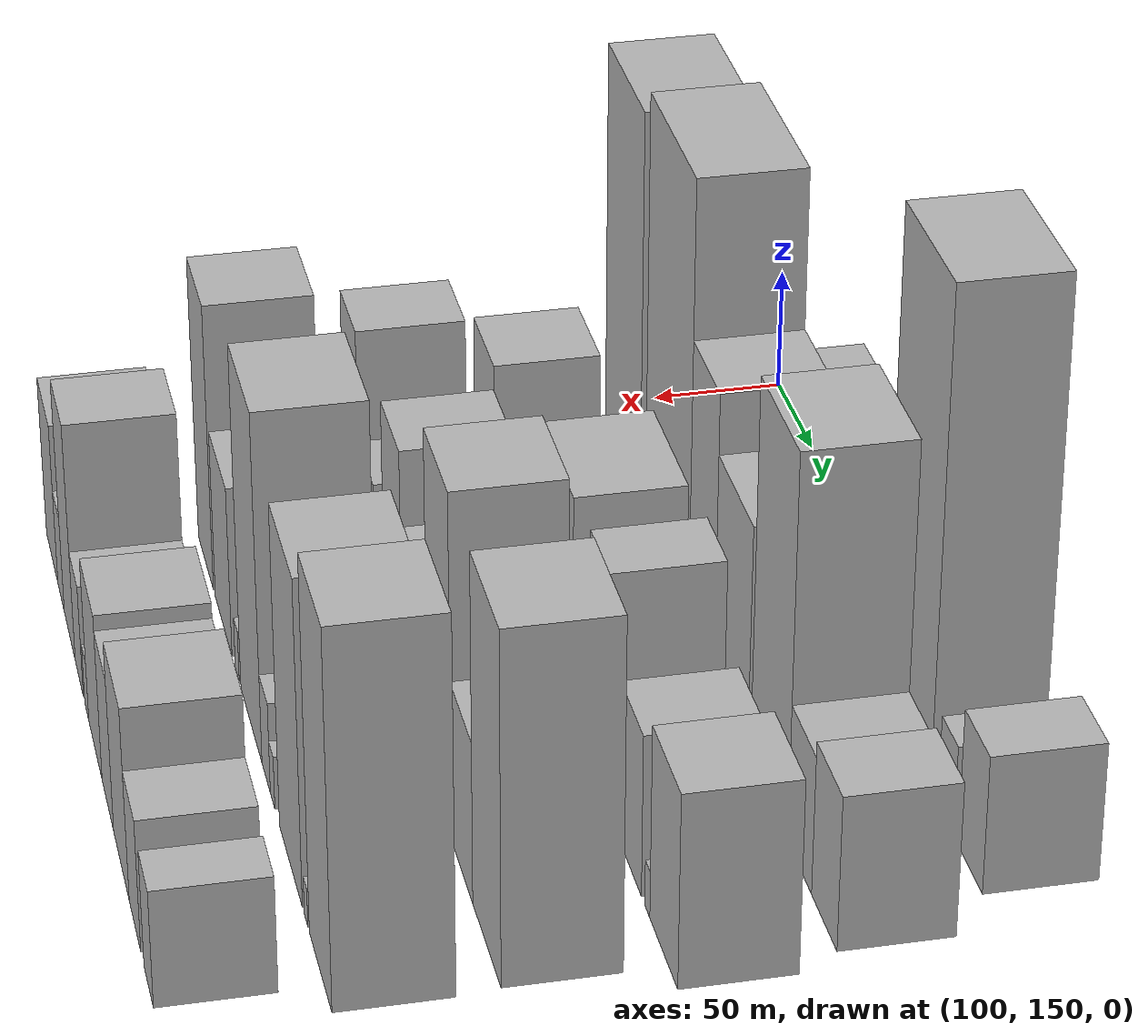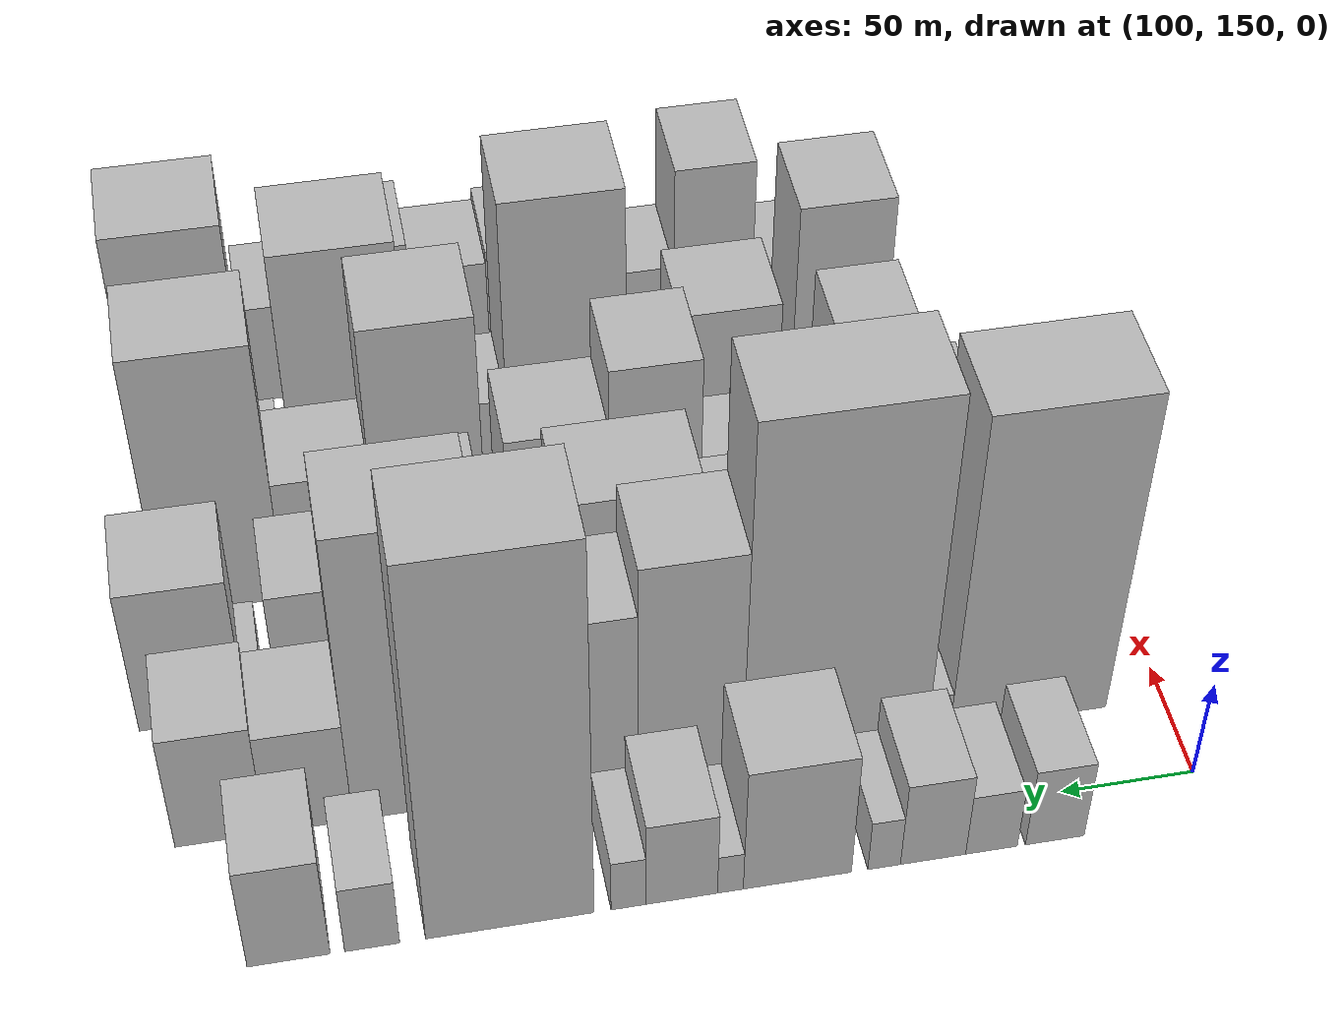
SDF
<sdf version="1.6">
 <world name="default">
  <model name="building_33">
   <static>1</static>
   <pose>100.0000 208.5232 0 0.000000 0.000000 0.000000</pose>
   <link name="link">
    <pose>0 0 21.00 0 0 0</pose>
    <collision name="collision"><geometry><box><size>40.0000 21.7659 42.0000</size></box></geometry></collision>
    <visual name="visual">
     <cast_shadows>0</cast_shadows>
     <geometry><box><size>40.0000 21.7659 42.0000</size></box></geometry>
     <material>
      <script>
       <uri>model://HANNAS_wall/materials/scripts</uri>
       <uri>model://HANNAS_wall/materials/textures</uri>
       <name>vrc/HANNAS_wall</name>
      </script>
     </material>
    </visual>
   </link>
  </model>
  <model name="building_34">
   <static>1</static>
   <pose>100.0000 231.9285 0 0.000000 0.000000 0.000000</pose>
   <link name="link">
    <pose>0 0 16.50 0 0 0</pose>
    <collision name="collision"><geometry><box><size>40.0000 19.0447 33.0000</size></box></geometry></collision>
    <visual name="visual">
     <cast_shadows>0</cast_shadows>
     <geometry><box><size>40.0000 19.0447 33.0000</size></box></geometry>
     <material>
      <script>
       <uri>model://HANNAS_wall/materials/scripts</uri>
       <uri>model://HANNAS_wall/materials/textures</uri>
       <name>vrc/HANNAS_wall</name>
      </script>
     </material>
    </visual>
   </link>
  </model>
  <model name="building_35">
   <static>1</static>
   <pose>100.0000 253.4220 0 0.000000 0.000000 0.000000</pose>
   <link name="link">
    <pose>0 0 22.50 0 0 0</pose>
    <collision name="collision"><geometry><box><size>40.0000 23.9424 45.0000</size></box></geometry></collision>
    <visual name="visual">
     <cast_shadows>0</cast_shadows>
     <geometry><box><size>40.0000 23.9424 45.0000</size></box></geometry>
     <material>
      <script>
       <uri>model://HANNAS_wall/materials/scripts</uri>
       <uri>model://HANNAS_wall/materials/textures</uri>
       <name>vrc/HANNAS_wall</name>
      </script>
     </material>
    </visual>
   </link>
  </model>
  <model name="building_36">
   <static>1</static>
   <pose>100.0000 271.3329 0 0.000000 0.000000 0.000000</pose>
   <link name="link">
    <pose>0 0 13.50 0 0 0</pose>
    <collision name="collision"><geometry><box><size>40.0000 11.8794 27.0000</size></box></geometry></collision>
    <visual name="visual">
     <cast_shadows>0</cast_shadows>
     <geometry><box><size>40.0000 11.8794 27.0000</size></box></geometry>
     <material>
      <script>
       <uri>model://HANNAS_wall/materials/scripts</uri>
       <uri>model://HANNAS_wall/materials/textures</uri>
       <name>vrc/HANNAS_wall</name>
      </script>
     </material>
    </visual>
   </link>
  </model>
  <model name="building_37">
   <static>1</static>
   <pose>100.0000 302.8294 0 0.000000 0.000000 0.000000</pose>
   <link name="link">
    <pose>0 0 33.00 0 0 0</pose>
    <collision name="collision"><geometry><box><size>40.0000 39.1136 66.0000</size></box></geometry></collision>
    <visual name="visual">
     <cast_shadows>0</cast_shadows>
     <geometry><box><size>40.0000 39.1136 66.0000</size></box></geometry>
     <material>
      <script>
       <uri>model://HANNAS_wall/materials/scripts</uri>
       <uri>model://HANNAS_wall/materials/textures</uri>
       <name>vrc/HANNAS_wall</name>
      </script>
     </material>
    </visual>
   </link>
  </model>
  <model name="building_38">
   <static>1</static>
   <pose>100.0000 327.0356 0 0.000000 0.000000 0.000000</pose>
   <link name="link">
    <pose>0 0 10.50 0 0 0</pose>
    <collision name="collision"><geometry><box><size>40.0000 9.2986 21.0000</size></box></geometry></collision>
    <visual name="visual">
     <cast_shadows>0</cast_shadows>
     <geometry><box><size>40.0000 9.2986 21.0000</size></box></geometry>
     <material>
      <script>
       <uri>model://HANNAS_wall/materials/scripts</uri>
       <uri>model://HANNAS_wall/materials/textures</uri>
       <name>vrc/HANNAS_wall</name>
      </script>
     </material>
    </visual>
   </link>
  </model>
  <model name="building_39">
   <static>1</static>
   <pose>100.0000 344.4830 0 0.000000 0.000000 0.000000</pose>
   <link name="link">
    <pose>0 0 22.50 0 0 0</pose>
    <collision name="collision"><geometry><box><size>40.0000 25.5962 45.0000</size></box></geometry></collision>
    <visual name="visual">
     <cast_shadows>0</cast_shadows>
     <geometry><box><size>40.0000 25.5962 45.0000</size></box></geometry>
     <material>
      <script>
       <uri>model://HANNAS_wall/materials/scripts</uri>
       <uri>model://HANNAS_wall/materials/textures</uri>
       <name>vrc/HANNAS_wall</name>
      </script>
     </material>
    </visual>
   </link>
  </model>
  <model name="building_40">
   <static>1</static>
   <pose>100.0000 363.4777 0 0.000000 0.000000 0.000000</pose>
   <link name="link">
    <pose>0 0 13.50 0 0 0</pose>
    <collision name="collision"><geometry><box><size>40.0000 12.3933 27.0000</size></box></geometry></collision>
    <visual name="visual">
     <cast_shadows>0</cast_shadows>
     <geometry><box><size>40.0000 12.3933 27.0000</size></box></geometry>
     <material>
      <script>
       <uri>model://HANNAS_wall/materials/scripts</uri>
       <uri>model://HANNAS_wall/materials/textures</uri>
       <name>vrc/HANNAS_wall</name>
      </script>
     </material>
    </visual>
   </link>
  </model>
  <model name="building_41">
   <static>1</static>
   <pose>100.0000 405.3680 0 0.000000 0.000000 0.000000</pose>
   <link name="link">
    <pose>0 0 97.50 0 0 0</pose>
    <collision name="collision"><geometry><box><size>40.0000 59.3873 195.0000</size></box></geometry></collision>
    <visual name="visual">
     <cast_shadows>0</cast_shadows>
     <geometry><box><size>40.0000 59.3873 195.0000</size></box></geometry>
     <material>
      <script>
       <uri>model://HANNAS_wall/materials/scripts</uri>
       <uri>model://HANNAS_wall/materials/textures</uri>
       <name>vrc/HANNAS_wall</name>
      </script>
     </material>
    </visual>
   </link>
  </model>
  <model name="building_42">
   <static>1</static>
   <pose>100.0000 453.6295 0 0.000000 0.000000 0.000000</pose>
   <link name="link">
    <pose>0 0 18.00 0 0 0</pose>
    <collision name="collision"><geometry><box><size>40.0000 19.1355 36.0000</size></box></geometry></collision>
    <visual name="visual">
     <cast_shadows>0</cast_shadows>
     <geometry><box><size>40.0000 19.1355 36.0000</size></box></geometry>
     <material>
      <script>
       <uri>model://HANNAS_wall/materials/scripts</uri>
       <uri>model://HANNAS_wall/materials/textures</uri>
       <name>vrc/HANNAS_wall</name>
      </script>
     </material>
    </visual>
   </link>
  </model>
  <model name="building_43">
   <static>1</static>
   <pose>100.0000 482.5405 0 0.000000 0.000000 0.000000</pose>
   <link name="link">
    <pose>0 0 27.00 0 0 0</pose>
    <collision name="collision"><geometry><box><size>40.0000 28.6865 54.0000</size></box></geometry></collision>
    <visual name="visual">
     <cast_shadows>0</cast_shadows>
     <geometry><box><size>40.0000 28.6865 54.0000</size></box></geometry>
     <material>
      <script>
       <uri>model://HANNAS_wall/materials/scripts</uri>
       <uri>model://HANNAS_wall/materials/textures</uri>
       <name>vrc/HANNAS_wall</name>
      </script>
     </material>
    </visual>
   </link>
  </model>
  <model name="building_88">
   <static>1</static>
   <pose>155.0000 202.4002 0 0.000000 0.000000 0.000000</pose>
   <link name="link">
    <pose>0 0 82.50 0 0 0</pose>
    <collision name="collision"><geometry><box><size>40.0000 60.0328 165.0000</size></box></geometry></collision>
    <visual name="visual">
     <cast_shadows>0</cast_shadows>
     <geometry><box><size>40.0000 60.0328 165.0000</size></box></geometry>
     <material>
      <script>
       <uri>model://HANNAS_wall/materials/scripts</uri>
       <uri>model://HANNAS_wall/materials/textures</uri>
       <name>vrc/HANNAS_wall</name>
      </script>
     </material>
    </visual>
   </link>
  </model>
  <model name="building_89">
   <static>1</static>
   <pose>155.0000 236.7056 0 0.000000 0.000000 0.000000</pose>
   <link name="link">
    <pose>0 0 10.50 0 0 0</pose>
    <collision name="collision"><geometry><box><size>40.0000 8.5781 21.0000</size></box></geometry></collision>
    <visual name="visual">
     <cast_shadows>0</cast_shadows>
     <geometry><box><size>40.0000 8.5781 21.0000</size></box></geometry>
     <material>
      <script>
       <uri>model://HANNAS_wall/materials/scripts</uri>
       <uri>model://HANNAS_wall/materials/textures</uri>
       <name>vrc/HANNAS_wall</name>
      </script>
     </material>
    </visual>
   </link>
  </model>
  <model name="building_90">
   <static>1</static>
   <pose>155.0000 275.9135 0 0.000000 0.000000 0.000000</pose>
   <link name="link">
    <pose>0 0 88.50 0 0 0</pose>
    <collision name="collision"><geometry><box><size>40.0000 69.8377 177.0000</size></box></geometry></collision>
    <visual name="visual">
     <cast_shadows>0</cast_shadows>
     <geometry><box><size>40.0000 69.8377 177.0000</size></box></geometry>
     <material>
      <script>
       <uri>model://HANNAS_wall/materials/scripts</uri>
       <uri>model://HANNAS_wall/materials/textures</uri>
       <name>vrc/HANNAS_wall</name>
      </script>
     </material>
    </visual>
   </link>
  </model>
  <model name="building_91">
   <static>1</static>
   <pose>155.0000 330.3484 0 0.000000 0.000000 0.000000</pose>
   <link name="link">
    <pose>0 0 57.00 0 0 0</pose>
    <collision name="collision"><geometry><box><size>40.0000 39.0320 114.0000</size></box></geometry></collision>
    <visual name="visual">
     <cast_shadows>0</cast_shadows>
     <geometry><box><size>40.0000 39.0320 114.0000</size></box></geometry>
     <material>
      <script>
       <uri>model://HANNAS_wall/materials/scripts</uri>
       <uri>model://HANNAS_wall/materials/textures</uri>
       <name>vrc/HANNAS_wall</name>
      </script>
     </material>
    </visual>
   </link>
  </model>
  <model name="building_92">
   <static>1</static>
   <pose>155.0000 374.4311 0 0.000000 0.000000 0.000000</pose>
   <link name="link">
    <pose>0 0 45.00 0 0 0</pose>
    <collision name="collision"><geometry><box><size>40.0000 49.1333 90.0000</size></box></geometry></collision>
    <visual name="visual">
     <cast_shadows>0</cast_shadows>
     <geometry><box><size>40.0000 49.1333 90.0000</size></box></geometry>
     <material>
      <script>
       <uri>model://HANNAS_wall/materials/scripts</uri>
       <uri>model://HANNAS_wall/materials/textures</uri>
       <name>vrc/HANNAS_wall</name>
      </script>
     </material>
    </visual>
   </link>
  </model>
  <model name="building_93">
   <static>1</static>
   <pose>155.0000 428.5436 0 0.000000 0.000000 0.000000</pose>
   <link name="link">
    <pose>0 0 75.00 0 0 0</pose>
    <collision name="collision"><geometry><box><size>40.0000 51.0916 150.0000</size></box></geometry></collision>
    <visual name="visual">
     <cast_shadows>0</cast_shadows>
     <geometry><box><size>40.0000 51.0916 150.0000</size></box></geometry>
     <material>
      <script>
       <uri>model://HANNAS_wall/materials/scripts</uri>
       <uri>model://HANNAS_wall/materials/textures</uri>
       <name>vrc/HANNAS_wall</name>
      </script>
     </material>
    </visual>
   </link>
  </model>
  <model name="building_94">
   <static>1</static>
   <pose>155.0000 469.7883 0 0.000000 0.000000 0.000000</pose>
   <link name="link">
    <pose>0 0 27.00 0 0 0</pose>
    <collision name="collision"><geometry><box><size>40.0000 31.3979 54.0000</size></box></geometry></collision>
    <visual name="visual">
     <cast_shadows>0</cast_shadows>
     <geometry><box><size>40.0000 31.3979 54.0000</size></box></geometry>
     <material>
      <script>
       <uri>model://HANNAS_wall/materials/scripts</uri>
       <uri>model://HANNAS_wall/materials/textures</uri>
       <name>vrc/HANNAS_wall</name>
      </script>
     </material>
    </visual>
   </link>
  </model>
  <model name="building_95">
   <static>1</static>
   <pose>155.0000 501.6435 0 0.000000 0.000000 0.000000</pose>
   <link name="link">
    <pose>0 0 30.00 0 0 0</pose>
    <collision name="collision"><geometry><box><size>40.0000 32.3125 60.0000</size></box></geometry></collision>
    <visual name="visual">
     <cast_shadows>0</cast_shadows>
     <geometry><box><size>40.0000 32.3125 60.0000</size></box></geometry>
     <material>
      <script>
       <uri>model://HANNAS_wall/materials/scripts</uri>
       <uri>model://HANNAS_wall/materials/textures</uri>
       <name>vrc/HANNAS_wall</name>
      </script>
     </material>
    </visual>
   </link>
  </model>
  <model name="building_135">
   <static>1</static>
   <pose>210.0000 209.8594 0 0.000000 0.000000 0.000000</pose>
   <link name="link">
    <pose>0 0 33.00 0 0 0</pose>
    <collision name="collision"><geometry><box><size>40.0000 38.6208 66.0000</size></box></geometry></collision>
    <visual name="visual">
     <cast_shadows>0</cast_shadows>
     <geometry><box><size>40.0000 38.6208 66.0000</size></box></geometry>
     <material>
      <script>
       <uri>model://HANNAS_wall/materials/scripts</uri>
       <uri>model://HANNAS_wall/materials/textures</uri>
       <name>vrc/HANNAS_wall</name>
      </script>
     </material>
    </visual>
   </link>
  </model>
  <model name="building_136">
   <static>1</static>
   <pose>210.0000 239.8237 0 0.000000 0.000000 0.000000</pose>
   <link name="link">
    <pose>0 0 19.50 0 0 0</pose>
    <collision name="collision"><geometry><box><size>40.0000 21.3077 39.0000</size></box></geometry></collision>
    <visual name="visual">
     <cast_shadows>0</cast_shadows>
     <geometry><box><size>40.0000 21.3077 39.0000</size></box></geometry>
     <material>
      <script>
       <uri>model://HANNAS_wall/materials/scripts</uri>
       <uri>model://HANNAS_wall/materials/textures</uri>
       <name>vrc/HANNAS_wall</name>
      </script>
     </material>
    </visual>
   </link>
  </model>
  <model name="building_137">
   <static>1</static>
   <pose>210.0000 263.3612 0 0.000000 0.000000 0.000000</pose>
   <link name="link">
    <pose>0 0 25.50 0 0 0</pose>
    <collision name="collision"><geometry><box><size>40.0000 25.7672 51.0000</size></box></geometry></collision>
    <visual name="visual">
     <cast_shadows>0</cast_shadows>
     <geometry><box><size>40.0000 25.7672 51.0000</size></box></geometry>
     <material>
      <script>
       <uri>model://HANNAS_wall/materials/scripts</uri>
       <uri>model://HANNAS_wall/materials/textures</uri>
       <name>vrc/HANNAS_wall</name>
      </script>
     </material>
    </visual>
   </link>
  </model>
  <model name="building_138">
   <static>1</static>
   <pose>210.0000 279.4580 0 0.000000 0.000000 0.000000</pose>
   <link name="link">
    <pose>0 0 7.50 0 0 0</pose>
    <collision name="collision"><geometry><box><size>40.0000 6.4266 15.0000</size></box></geometry></collision>
    <visual name="visual">
     <cast_shadows>0</cast_shadows>
     <geometry><box><size>40.0000 6.4266 15.0000</size></box></geometry>
     <material>
      <script>
       <uri>model://HANNAS_wall/materials/scripts</uri>
       <uri>model://HANNAS_wall/materials/textures</uri>
       <name>vrc/HANNAS_wall</name>
      </script>
     </material>
    </visual>
   </link>
  </model>
  <model name="building_139">
   <static>1</static>
   <pose>210.0000 298.5849 0 0.000000 0.000000 0.000000</pose>
   <link name="link">
    <pose>0 0 31.50 0 0 0</pose>
    <collision name="collision"><geometry><box><size>40.0000 31.8272 63.0000</size></box></geometry></collision>
    <visual name="visual">
     <cast_shadows>0</cast_shadows>
     <geometry><box><size>40.0000 31.8272 63.0000</size></box></geometry>
     <material>
      <script>
       <uri>model://HANNAS_wall/materials/scripts</uri>
       <uri>model://HANNAS_wall/materials/textures</uri>
       <name>vrc/HANNAS_wall</name>
      </script>
     </material>
    </visual>
   </link>
  </model>
  <model name="building_140">
   <static>1</static>
   <pose>210.0000 341.1894 0 0.000000 0.000000 0.000000</pose>
   <link name="link">
    <pose>0 0 45.00 0 0 0</pose>
    <collision name="collision"><geometry><box><size>40.0000 53.3818 90.0000</size></box></geometry></collision>
    <visual name="visual">
     <cast_shadows>0</cast_shadows>
     <geometry><box><size>40.0000 53.3818 90.0000</size></box></geometry>
     <material>
      <script>
       <uri>model://HANNAS_wall/materials/scripts</uri>
       <uri>model://HANNAS_wall/materials/textures</uri>
       <name>vrc/HANNAS_wall</name>
      </script>
     </material>
    </visual>
   </link>
  </model>
  <model name="building_141">
   <static>1</static>
   <pose>210.0000 377.9662 0 0.000000 0.000000 0.000000</pose>
   <link name="link">
    <pose>0 0 18.00 0 0 0</pose>
    <collision name="collision"><geometry><box><size>40.0000 20.1720 36.0000</size></box></geometry></collision>
    <visual name="visual">
     <cast_shadows>0</cast_shadows>
     <geometry><box><size>40.0000 20.1720 36.0000</size></box></geometry>
     <material>
      <script>
       <uri>model://HANNAS_wall/materials/scripts</uri>
       <uri>model://HANNAS_wall/materials/textures</uri>
       <name>vrc/HANNAS_wall</name>
      </script>
     </material>
    </visual>
   </link>
  </model>
  <model name="building_142">
   <static>1</static>
   <pose>210.0000 391.2594 0 0.000000 0.000000 0.000000</pose>
   <link name="link">
    <pose>0 0 7.50 0 0 0</pose>
    <collision name="collision"><geometry><box><size>40.0000 6.4143 15.0000</size></box></geometry></collision>
    <visual name="visual">
     <cast_shadows>0</cast_shadows>
     <geometry><box><size>40.0000 6.4143 15.0000</size></box></geometry>
     <material>
      <script>
       <uri>model://HANNAS_wall/materials/scripts</uri>
       <uri>model://HANNAS_wall/materials/textures</uri>
       <name>vrc/HANNAS_wall</name>
      </script>
     </material>
    </visual>
   </link>
  </model>
  <model name="building_143">
   <static>1</static>
   <pose>210.0000 408.9471 0 0.000000 0.000000 0.000000</pose>
   <link name="link">
    <pose>0 0 46.50 0 0 0</pose>
    <collision name="collision"><geometry><box><size>40.0000 28.9612 93.0000</size></box></geometry></collision>
    <visual name="visual">
     <cast_shadows>0</cast_shadows>
     <geometry><box><size>40.0000 28.9612 93.0000</size></box></geometry>
     <material>
      <script>
       <uri>model://HANNAS_wall/materials/scripts</uri>
       <uri>model://HANNAS_wall/materials/textures</uri>
       <name>vrc/HANNAS_wall</name>
      </script>
     </material>
    </visual>
   </link>
  </model>
  <model name="building_144">
   <static>1</static>
   <pose>210.0000 432.5213 0 0.000000 0.000000 0.000000</pose>
   <link name="link">
    <pose>0 0 16.50 0 0 0</pose>
    <collision name="collision"><geometry><box><size>40.0000 18.1872 33.0000</size></box></geometry></collision>
    <visual name="visual">
     <cast_shadows>0</cast_shadows>
     <geometry><box><size>40.0000 18.1872 33.0000</size></box></geometry>
     <material>
      <script>
       <uri>model://HANNAS_wall/materials/scripts</uri>
       <uri>model://HANNAS_wall/materials/textures</uri>
       <name>vrc/HANNAS_wall</name>
      </script>
     </material>
    </visual>
   </link>
  </model>
  <model name="building_145">
   <static>1</static>
   <pose>210.0000 458.3797 0 0.000000 0.000000 0.000000</pose>
   <link name="link">
    <pose>0 0 31.50 0 0 0</pose>
    <collision name="collision"><geometry><box><size>40.0000 33.5295 63.0000</size></box></geometry></collision>
    <visual name="visual">
     <cast_shadows>0</cast_shadows>
     <geometry><box><size>40.0000 33.5295 63.0000</size></box></geometry>
     <material>
      <script>
       <uri>model://HANNAS_wall/materials/scripts</uri>
       <uri>model://HANNAS_wall/materials/textures</uri>
       <name>vrc/HANNAS_wall</name>
      </script>
     </material>
    </visual>
   </link>
  </model>
  <model name="building_146">
   <static>1</static>
   <pose>210.0000 483.8053 0 0.000000 0.000000 0.000000</pose>
   <link name="link">
    <pose>0 0 9.00 0 0 0</pose>
    <collision name="collision"><geometry><box><size>40.0000 7.3217 18.0000</size></box></geometry></collision>
    <visual name="visual">
     <cast_shadows>0</cast_shadows>
     <geometry><box><size>40.0000 7.3217 18.0000</size></box></geometry>
     <material>
      <script>
       <uri>model://HANNAS_wall/materials/scripts</uri>
       <uri>model://HANNAS_wall/materials/textures</uri>
       <name>vrc/HANNAS_wall</name>
      </script>
     </material>
    </visual>
   </link>
  </model>
  <model name="building_147">
   <static>1</static>
   <pose>210.0000 507.3242 0 0.000000 0.000000 0.000000</pose>
   <link name="link">
    <pose>0 0 37.50 0 0 0</pose>
    <collision name="collision"><geometry><box><size>40.0000 39.7161 75.0000</size></box></geometry></collision>
    <visual name="visual">
     <cast_shadows>0</cast_shadows>
     <geometry><box><size>40.0000 39.7161 75.0000</size></box></geometry>
     <material>
      <script>
       <uri>model://HANNAS_wall/materials/scripts</uri>
       <uri>model://HANNAS_wall/materials/textures</uri>
       <name>vrc/HANNAS_wall</name>
      </script>
     </material>
    </visual>
   </link>
  </model>
  <model name="building_186">
   <static>1</static>
   <pose>265.0000 207.2361 0 0.000000 0.000000 0.000000</pose>
   <link name="link">
    <pose>0 0 25.50 0 0 0</pose>
    <collision name="collision"><geometry><box><size>40.0000 26.7664 51.0000</size></box></geometry></collision>
    <visual name="visual">
     <cast_shadows>0</cast_shadows>
     <geometry><box><size>40.0000 26.7664 51.0000</size></box></geometry>
     <material>
      <script>
       <uri>model://HANNAS_wall/materials/scripts</uri>
       <uri>model://HANNAS_wall/materials/textures</uri>
       <name>vrc/HANNAS_wall</name>
      </script>
     </material>
    </visual>
   </link>
  </model>
  <model name="building_187">
   <static>1</static>
   <pose>265.0000 236.7487 0 0.000000 0.000000 0.000000</pose>
   <link name="link">
    <pose>0 0 49.50 0 0 0</pose>
    <collision name="collision"><geometry><box><size>40.0000 32.2587 99.0000</size></box></geometry></collision>
    <visual name="visual">
     <cast_shadows>0</cast_shadows>
     <geometry><box><size>40.0000 32.2587 99.0000</size></box></geometry>
     <material>
      <script>
       <uri>model://HANNAS_wall/materials/scripts</uri>
       <uri>model://HANNAS_wall/materials/textures</uri>
       <name>vrc/HANNAS_wall</name>
      </script>
     </material>
    </visual>
   </link>
  </model>
  <model name="building_188">
   <static>1</static>
   <pose>265.0000 268.8286 0 0.000000 0.000000 0.000000</pose>
   <link name="link">
    <pose>0 0 27.00 0 0 0</pose>
    <collision name="collision"><geometry><box><size>40.0000 31.9012 54.0000</size></box></geometry></collision>
    <visual name="visual">
     <cast_shadows>0</cast_shadows>
     <geometry><box><size>40.0000 31.9012 54.0000</size></box></geometry>
     <material>
      <script>
       <uri>model://HANNAS_wall/materials/scripts</uri>
       <uri>model://HANNAS_wall/materials/textures</uri>
       <name>vrc/HANNAS_wall</name>
      </script>
     </material>
    </visual>
   </link>
  </model>
  <model name="building_189">
   <static>1</static>
   <pose>265.0000 294.6045 0 0.000000 0.000000 0.000000</pose>
   <link name="link">
    <pose>0 0 19.50 0 0 0</pose>
    <collision name="collision"><geometry><box><size>40.0000 19.6506 39.0000</size></box></geometry></collision>
    <visual name="visual">
     <cast_shadows>0</cast_shadows>
     <geometry><box><size>40.0000 19.6506 39.0000</size></box></geometry>
     <material>
      <script>
       <uri>model://HANNAS_wall/materials/scripts</uri>
       <uri>model://HANNAS_wall/materials/textures</uri>
       <name>vrc/HANNAS_wall</name>
      </script>
     </material>
    </visual>
   </link>
  </model>
  <model name="building_190">
   <static>1</static>
   <pose>265.0000 322.3091 0 0.000000 0.000000 0.000000</pose>
   <link name="link">
    <pose>0 0 49.50 0 0 0</pose>
    <collision name="collision"><geometry><box><size>40.0000 35.7586 99.0000</size></box></geometry></collision>
    <visual name="visual">
     <cast_shadows>0</cast_shadows>
     <geometry><box><size>40.0000 35.7586 99.0000</size></box></geometry>
     <material>
      <script>
       <uri>model://HANNAS_wall/materials/scripts</uri>
       <uri>model://HANNAS_wall/materials/textures</uri>
       <name>vrc/HANNAS_wall</name>
      </script>
     </material>
    </visual>
   </link>
  </model>
  <model name="building_191">
   <static>1</static>
   <pose>265.0000 360.1919 0 0.000000 0.000000 0.000000</pose>
   <link name="link">
    <pose>0 0 34.50 0 0 0</pose>
    <collision name="collision"><geometry><box><size>40.0000 40.0070 69.0000</size></box></geometry></collision>
    <visual name="visual">
     <cast_shadows>0</cast_shadows>
     <geometry><box><size>40.0000 40.0070 69.0000</size></box></geometry>
     <material>
      <script>
       <uri>model://HANNAS_wall/materials/scripts</uri>
       <uri>model://HANNAS_wall/materials/textures</uri>
       <name>vrc/HANNAS_wall</name>
      </script>
     </material>
    </visual>
   </link>
  </model>
  <model name="building_192">
   <static>1</static>
   <pose>265.0000 409.4947 0 0.000000 0.000000 0.000000</pose>
   <link name="link">
    <pose>0 0 67.50 0 0 0</pose>
    <collision name="collision"><geometry><box><size>40.0000 42.5987 135.0000</size></box></geometry></collision>
    <visual name="visual">
     <cast_shadows>0</cast_shadows>
     <geometry><box><size>40.0000 42.5987 135.0000</size></box></geometry>
     <material>
      <script>
       <uri>model://HANNAS_wall/materials/scripts</uri>
       <uri>model://HANNAS_wall/materials/textures</uri>
       <name>vrc/HANNAS_wall</name>
      </script>
     </material>
    </visual>
   </link>
  </model>
  <model name="building_193">
   <static>1</static>
   <pose>265.0000 449.2706 0 0.000000 0.000000 0.000000</pose>
   <link name="link">
    <pose>0 0 31.50 0 0 0</pose>
    <collision name="collision"><geometry><box><size>40.0000 36.9530 63.0000</size></box></geometry></collision>
    <visual name="visual">
     <cast_shadows>0</cast_shadows>
     <geometry><box><size>40.0000 36.9530 63.0000</size></box></geometry>
     <material>
      <script>
       <uri>model://HANNAS_wall/materials/scripts</uri>
       <uri>model://HANNAS_wall/materials/textures</uri>
       <name>vrc/HANNAS_wall</name>
      </script>
     </material>
    </visual>
   </link>
  </model>
  <model name="building_194">
   <static>1</static>
   <pose>265.0000 491.3094 0 0.000000 0.000000 0.000000</pose>
   <link name="link">
    <pose>0 0 67.50 0 0 0</pose>
    <collision name="collision"><geometry><box><size>40.0000 47.1246 135.0000</size></box></geometry></collision>
    <visual name="visual">
     <cast_shadows>0</cast_shadows>
     <geometry><box><size>40.0000 47.1246 135.0000</size></box></geometry>
     <material>
      <script>
       <uri>model://HANNAS_wall/materials/scripts</uri>
       <uri>model://HANNAS_wall/materials/textures</uri>
       <name>vrc/HANNAS_wall</name>
      </script>
     </material>
    </visual>
   </link>
  </model>
  <model name="building_234">
   <static>1</static>
   <pose>320.0000 236.9405 0 0.000000 0.000000 0.000000</pose>
   <link name="link">
    <pose>0 0 58.50 0 0 0</pose>
    <collision name="collision"><geometry><box><size>40.0000 38.1625 117.0000</size></box></geometry></collision>
    <visual name="visual">
     <cast_shadows>0</cast_shadows>
     <geometry><box><size>40.0000 38.1625 117.0000</size></box></geometry>
     <material>
      <script>
       <uri>model://HANNAS_wall/materials/scripts</uri>
       <uri>model://HANNAS_wall/materials/textures</uri>
       <name>vrc/HANNAS_wall</name>
      </script>
     </material>
    </visual>
   </link>
  </model>
  <model name="building_235">
   <static>1</static>
   <pose>320.0000 281.5710 0 0.000000 0.000000 0.000000</pose>
   <link name="link">
    <pose>0 0 34.50 0 0 0</pose>
    <collision name="collision"><geometry><box><size>40.0000 41.0984 69.0000</size></box></geometry></collision>
    <visual name="visual">
     <cast_shadows>0</cast_shadows>
     <geometry><box><size>40.0000 41.0984 69.0000</size></box></geometry>
     <material>
      <script>
       <uri>model://HANNAS_wall/materials/scripts</uri>
       <uri>model://HANNAS_wall/materials/textures</uri>
       <name>vrc/HANNAS_wall</name>
      </script>
     </material>
    </visual>
   </link>
  </model>
  <model name="building_236">
   <static>1</static>
   <pose>320.0000 314.8189 0 0.000000 0.000000 0.000000</pose>
   <link name="link">
    <pose>0 0 10.50 0 0 0</pose>
    <collision name="collision"><geometry><box><size>40.0000 9.3974 21.0000</size></box></geometry></collision>
    <visual name="visual">
     <cast_shadows>0</cast_shadows>
     <geometry><box><size>40.0000 9.3974 21.0000</size></box></geometry>
     <material>
      <script>
       <uri>model://HANNAS_wall/materials/scripts</uri>
       <uri>model://HANNAS_wall/materials/textures</uri>
       <name>vrc/HANNAS_wall</name>
      </script>
     </material>
    </visual>
   </link>
  </model>
  <model name="building_237">
   <static>1</static>
   <pose>320.0000 347.7229 0 0.000000 0.000000 0.000000</pose>
   <link name="link">
    <pose>0 0 69.00 0 0 0</pose>
    <collision name="collision"><geometry><box><size>40.0000 48.4106 138.0000</size></box></geometry></collision>
    <visual name="visual">
     <cast_shadows>0</cast_shadows>
     <geometry><box><size>40.0000 48.4106 138.0000</size></box></geometry>
     <material>
      <script>
       <uri>model://HANNAS_wall/materials/scripts</uri>
       <uri>model://HANNAS_wall/materials/textures</uri>
       <name>vrc/HANNAS_wall</name>
      </script>
     </material>
    </visual>
   </link>
  </model>
  <model name="building_238">
   <static>1</static>
   <pose>320.0000 381.2087 0 0.000000 0.000000 0.000000</pose>
   <link name="link">
    <pose>0 0 18.00 0 0 0</pose>
    <collision name="collision"><geometry><box><size>40.0000 18.5609 36.0000</size></box></geometry></collision>
    <visual name="visual">
     <cast_shadows>0</cast_shadows>
     <geometry><box><size>40.0000 18.5609 36.0000</size></box></geometry>
     <material>
      <script>
       <uri>model://HANNAS_wall/materials/scripts</uri>
       <uri>model://HANNAS_wall/materials/textures</uri>
       <name>vrc/HANNAS_wall</name>
      </script>
     </material>
    </visual>
   </link>
  </model>
  <model name="building_239">
   <static>1</static>
   <pose>320.0000 395.4727 0 0.000000 0.000000 0.000000</pose>
   <link name="link">
    <pose>0 0 10.50 0 0 0</pose>
    <collision name="collision"><geometry><box><size>40.0000 9.9671 21.0000</size></box></geometry></collision>
    <visual name="visual">
     <cast_shadows>0</cast_shadows>
     <geometry><box><size>40.0000 9.9671 21.0000</size></box></geometry>
     <material>
      <script>
       <uri>model://HANNAS_wall/materials/scripts</uri>
       <uri>model://HANNAS_wall/materials/textures</uri>
       <name>vrc/HANNAS_wall</name>
      </script>
     </material>
    </visual>
   </link>
  </model>
  <model name="building_240">
   <static>1</static>
   <pose>320.0000 434.3662 0 0.000000 0.000000 0.000000</pose>
   <link name="link">
    <pose>0 0 63.00 0 0 0</pose>
    <collision name="collision"><geometry><box><size>40.0000 47.8199 126.0000</size></box></geometry></collision>
    <visual name="visual">
     <cast_shadows>0</cast_shadows>
     <geometry><box><size>40.0000 47.8199 126.0000</size></box></geometry>
     <material>
      <script>
       <uri>model://HANNAS_wall/materials/scripts</uri>
       <uri>model://HANNAS_wall/materials/textures</uri>
       <name>vrc/HANNAS_wall</name>
      </script>
     </material>
    </visual>
   </link>
  </model>
  <model name="building_241">
   <static>1</static>
   <pose>320.0000 465.9193 0 0.000000 0.000000 0.000000</pose>
   <link name="link">
    <pose>0 0 7.50 0 0 0</pose>
    <collision name="collision"><geometry><box><size>40.0000 7.2863 15.0000</size></box></geometry></collision>
    <visual name="visual">
     <cast_shadows>0</cast_shadows>
     <geometry><box><size>40.0000 7.2863 15.0000</size></box></geometry>
     <material>
      <script>
       <uri>model://HANNAS_wall/materials/scripts</uri>
       <uri>model://HANNAS_wall/materials/textures</uri>
       <name>vrc/HANNAS_wall</name>
      </script>
     </material>
    </visual>
   </link>
  </model>
  <model name="building_242">
   <static>1</static>
   <pose>320.0000 494.6324 0 0.000000 0.000000 0.000000</pose>
   <link name="link">
    <pose>0 0 72.00 0 0 0</pose>
    <collision name="collision"><geometry><box><size>40.0000 44.1399 144.0000</size></box></geometry></collision>
    <visual name="visual">
     <cast_shadows>0</cast_shadows>
     <geometry><box><size>40.0000 44.1399 144.0000</size></box></geometry>
     <material>
      <script>
       <uri>model://HANNAS_wall/materials/scripts</uri>
       <uri>model://HANNAS_wall/materials/textures</uri>
       <name>vrc/HANNAS_wall</name>
      </script>
     </material>
    </visual>
   </link>
  </model>
  <model name="building_276">
   <static>1</static>
   <pose>375.0000 221.8227 0 0.000000 0.000000 0.000000</pose>
   <link name="link">
    <pose>0 0 33.00 0 0 0</pose>
    <collision name="collision"><geometry><box><size>40.0000 36.5117 66.0000</size></box></geometry></collision>
    <visual name="visual">
     <cast_shadows>0</cast_shadows>
     <geometry><box><size>40.0000 36.5117 66.0000</size></box></geometry>
     <material>
      <script>
       <uri>model://HANNAS_wall/materials/scripts</uri>
       <uri>model://HANNAS_wall/materials/textures</uri>
       <name>vrc/HANNAS_wall</name>
      </script>
     </material>
    </visual>
   </link>
  </model>
  <model name="building_277">
   <static>1</static>
   <pose>375.0000 250.1624 0 0.000000 0.000000 0.000000</pose>
   <link name="link">
    <pose>0 0 19.50 0 0 0</pose>
    <collision name="collision"><geometry><box><size>40.0000 20.1676 39.0000</size></box></geometry></collision>
    <visual name="visual">
     <cast_shadows>0</cast_shadows>
     <geometry><box><size>40.0000 20.1676 39.0000</size></box></geometry>
     <material>
      <script>
       <uri>model://HANNAS_wall/materials/scripts</uri>
       <uri>model://HANNAS_wall/materials/textures</uri>
       <name>vrc/HANNAS_wall</name>
      </script>
     </material>
    </visual>
   </link>
  </model>
  <model name="building_278">
   <static>1</static>
   <pose>375.0000 276.9210 0 0.000000 0.000000 0.000000</pose>
   <link name="link">
    <pose>0 0 48.00 0 0 0</pose>
    <collision name="collision"><geometry><box><size>40.0000 33.3498 96.0000</size></box></geometry></collision>
    <visual name="visual">
     <cast_shadows>0</cast_shadows>
     <geometry><box><size>40.0000 33.3498 96.0000</size></box></geometry>
     <material>
      <script>
       <uri>model://HANNAS_wall/materials/scripts</uri>
       <uri>model://HANNAS_wall/materials/textures</uri>
       <name>vrc/HANNAS_wall</name>
      </script>
     </material>
    </visual>
   </link>
  </model>
  <model name="building_279">
   <static>1</static>
   <pose>375.0000 305.6330 0 0.000000 0.000000 0.000000</pose>
   <link name="link">
    <pose>0 0 22.50 0 0 0</pose>
    <collision name="collision"><geometry><box><size>40.0000 24.0741 45.0000</size></box></geometry></collision>
    <visual name="visual">
     <cast_shadows>0</cast_shadows>
     <geometry><box><size>40.0000 24.0741 45.0000</size></box></geometry>
     <material>
      <script>
       <uri>model://HANNAS_wall/materials/scripts</uri>
       <uri>model://HANNAS_wall/materials/textures</uri>
       <name>vrc/HANNAS_wall</name>
      </script>
     </material>
    </visual>
   </link>
  </model>
  <model name="building_280">
   <static>1</static>
   <pose>375.0000 327.5738 0 0.000000 0.000000 0.000000</pose>
   <link name="link">
    <pose>0 0 12.00 0 0 0</pose>
    <collision name="collision"><geometry><box><size>40.0000 11.8075 24.0000</size></box></geometry></collision>
    <visual name="visual">
     <cast_shadows>0</cast_shadows>
     <geometry><box><size>40.0000 11.8075 24.0000</size></box></geometry>
     <material>
      <script>
       <uri>model://HANNAS_wall/materials/scripts</uri>
       <uri>model://HANNAS_wall/materials/textures</uri>
       <name>vrc/HANNAS_wall</name>
      </script>
     </material>
    </visual>
   </link>
  </model>
  <model name="building_281">
   <static>1</static>
   <pose>375.0000 352.2551 0 0.000000 0.000000 0.000000</pose>
   <link name="link">
    <pose>0 0 33.00 0 0 0</pose>
    <collision name="collision"><geometry><box><size>40.0000 37.5550 66.0000</size></box></geometry></collision>
    <visual name="visual">
     <cast_shadows>0</cast_shadows>
     <geometry><box><size>40.0000 37.5550 66.0000</size></box></geometry>
     <material>
      <script>
       <uri>model://HANNAS_wall/materials/scripts</uri>
       <uri>model://HANNAS_wall/materials/textures</uri>
       <name>vrc/HANNAS_wall</name>
      </script>
     </material>
    </visual>
   </link>
  </model>
  <model name="building_282">
   <static>1</static>
   <pose>375.0000 386.6985 0 0.000000 0.000000 0.000000</pose>
   <link name="link">
    <pose>0 0 30.00 0 0 0</pose>
    <collision name="collision"><geometry><box><size>40.0000 31.3318 60.0000</size></box></geometry></collision>
    <visual name="visual">
     <cast_shadows>0</cast_shadows>
     <geometry><box><size>40.0000 31.3318 60.0000</size></box></geometry>
     <material>
      <script>
       <uri>model://HANNAS_wall/materials/scripts</uri>
       <uri>model://HANNAS_wall/materials/textures</uri>
       <name>vrc/HANNAS_wall</name>
      </script>
     </material>
    </visual>
   </link>
  </model>
  <model name="building_283">
   <static>1</static>
   <pose>375.0000 422.7312 0 0.000000 0.000000 0.000000</pose>
   <link name="link">
    <pose>0 0 37.50 0 0 0</pose>
    <collision name="collision"><geometry><box><size>40.0000 40.7337 75.0000</size></box></geometry></collision>
    <visual name="visual">
     <cast_shadows>0</cast_shadows>
     <geometry><box><size>40.0000 40.7337 75.0000</size></box></geometry>
     <material>
      <script>
       <uri>model://HANNAS_wall/materials/scripts</uri>
       <uri>model://HANNAS_wall/materials/textures</uri>
       <name>vrc/HANNAS_wall</name>
      </script>
     </material>
    </visual>
   </link>
  </model>
  <model name="building_284">
   <static>1</static>
   <pose>375.0000 457.5224 0 0.000000 0.000000 0.000000</pose>
   <link name="link">
    <pose>0 0 25.50 0 0 0</pose>
    <collision name="collision"><geometry><box><size>40.0000 28.8486 51.0000</size></box></geometry></collision>
    <visual name="visual">
     <cast_shadows>0</cast_shadows>
     <geometry><box><size>40.0000 28.8486 51.0000</size></box></geometry>
     <material>
      <script>
       <uri>model://HANNAS_wall/materials/scripts</uri>
       <uri>model://HANNAS_wall/materials/textures</uri>
       <name>vrc/HANNAS_wall</name>
      </script>
     </material>
    </visual>
   </link>
  </model>
  <model name="building_285">
   <static>1</static>
   <pose>375.0000 491.3187 0 0.000000 0.000000 0.000000</pose>
   <link name="link">
    <pose>0 0 22.50 0 0 0</pose>
    <collision name="collision"><geometry><box><size>40.0000 22.7440 45.0000</size></box></geometry></collision>
    <visual name="visual">
     <cast_shadows>0</cast_shadows>
     <geometry><box><size>40.0000 22.7440 45.0000</size></box></geometry>
     <material>
      <script>
       <uri>model://HANNAS_wall/materials/scripts</uri>
       <uri>model://HANNAS_wall/materials/textures</uri>
       <name>vrc/HANNAS_wall</name>
      </script>
     </material>
    </visual>
   </link>
  </model>
 </world>
</sdf>
